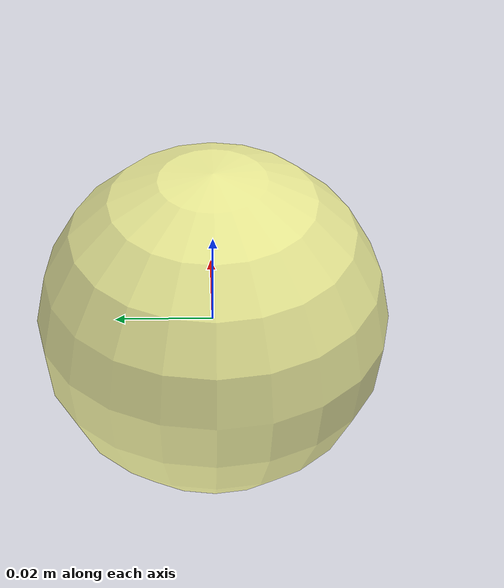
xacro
<?xml version="1.0" ?>
<robot name="sphero" xmlns:xacro="http://www.ros.org/wiki/xacro">

  <xacro:include filename="$(find sphero_formation_rl)/urdf/materials.xacro" />
  <xacro:include filename="$(find sphero_formation_rl)/urdf/sphero_obstacle.gazebo" >
  </xacro:include>
  <xacro:include filename="$(find sphero_formation_rl)/urdf/macros.xacro" />
  <xacro:include filename="$(find sphero_formation_rl)/urdf/sphero_dummy.xacro" />

  <link name="link_chassis">
    <pose>0 0 0 0 0 0</pose>
    <inertial>
      <mass value="1"/>
      <origin rpy="0 0 0" xyz="0 0 0"/>
      <inertia ixx="1.0" ixy="0" ixz="0" iyy="1.0" iyz="0" izz="1.0"/>
    </inertial>
    <collision name="collision_chassis">
      <geometry>
        <sphere radius="0.036"/>
      </geometry>
    </collision>
    <visual>
      <geometry>
        <sphere radius="0.036"/>
      </geometry>
      <material name="white">
        <color rgba="1.0 1.0 0.5 0.7"/>
      </material>
    </visual>

  </link>

</robot>

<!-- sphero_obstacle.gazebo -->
<robot>

  <arg name="robot_name" default ="sphero"/>
  <gazebo reference="link_chassis">
    <material>Gazebo/Red</material>
  </gazebo>
  <gazebo reference="link_left_wheel">
    <material>Gazebo/Blue</material>
  </gazebo>
  <gazebo reference="link_right_wheel">
    <material>Gazebo/Blue</material>
  </gazebo>

 <gazebo>
    <plugin name="omni_steering" filename="libgazebo_sphero_controller.so">
      <commandTopic>cmd_vel</commandTopic>
      <odometryTopic>odom</odometryTopic>
      <odometryFrame>odom</odometryFrame>
      <odometryRate>20.0</odometryRate>
      <robotBaseFrame>link_chassis</robotBaseFrame>
    </plugin>
  </gazebo>

<!-- imu -->
  <gazebo>
    <plugin name="gazebo_ros_imu_controller" filename="libgazebo_ros_imu.so">

      <topicName>imu/data3</topicName>
      <serviceName>imu/service</serviceName>
      <bodyName>link_chassis</bodyName>
      <gaussianNoise>0</gaussianNoise>
      <rpyOffsets>0 0 0</rpyOffsets>
      <updateRate>50.0</updateRate>
      <alwaysOn>true</alwaysOn>
      <gaussianNoise>0</gaussianNoise>
    </plugin>
  </gazebo>

</robot>
